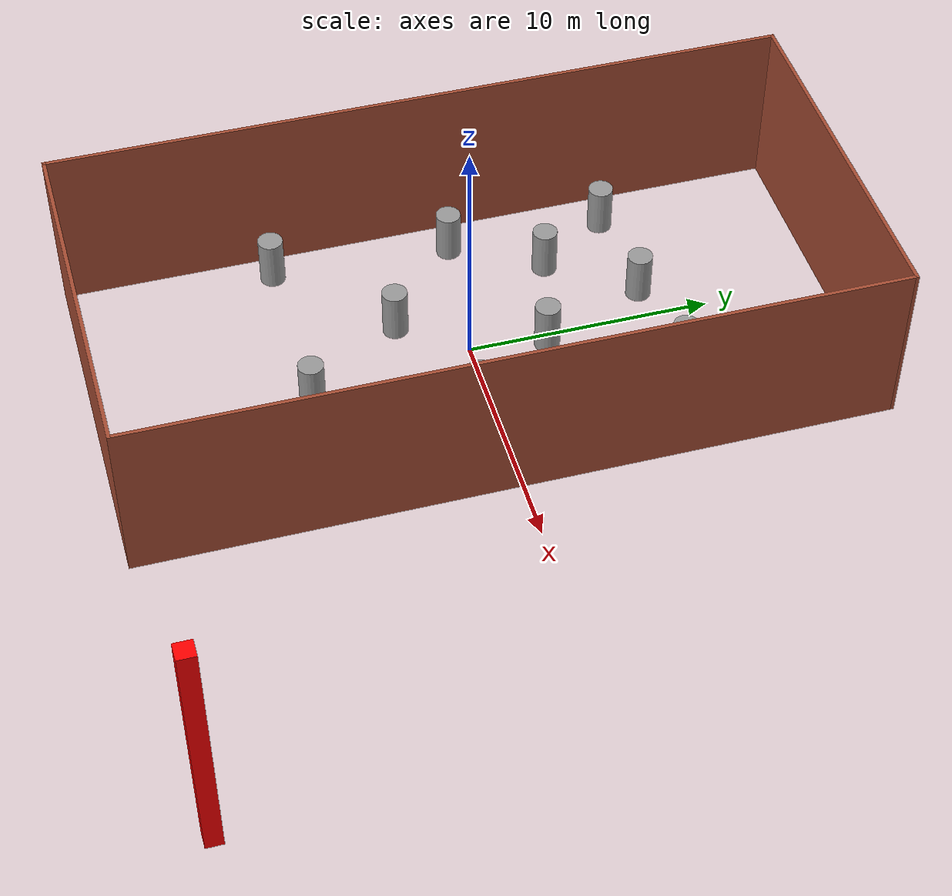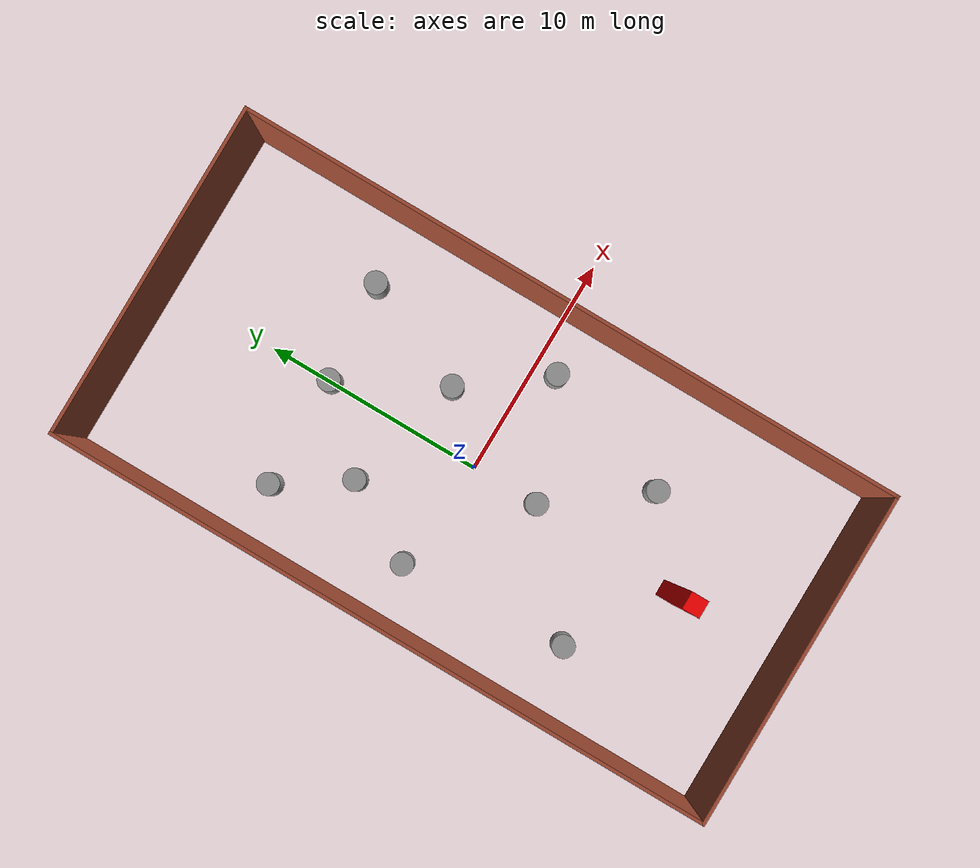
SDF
<sdf version="1.7">
 <world name="off-road_world">
  <light type="directional" name="sun">
   <pose>0 0 10 0 0 0</pose>
   <diffuse>0.8 0.8 0.8 1</diffuse>
   <specular>0.2 0.2 0.2 1</specular>
   <attenuation>
    <range>1000</range>
    <constant>0.9</constant>
    <linear>0.01</linear>
    <quadratic>0.001</quadratic>
   </attenuation>
   <direction>-0.5 0.1 -0.9</direction>
  </light>
  <include><name>high_wall</name><uri>model://high_wall</uri></include>
  <include><name>unit_box_real</name><pose>0 -13 -22.54 0 0 0</pose><uri>model://unit_box_real</uri></include>
  <include>
   <name>unit_cylinder0</name>
   <pose>4.43 7.36 1.7 0 0 0</pose>
   <uri>model://unit_cylinder</uri>
   <static>true</static>
  </include>
  <include>
   <name>unit_cylinder1</name>
   <pose>0 7.00 1.4 0 0 0</pose>
   <uri>model://unit_cylinder</uri>
   <static>true</static>
  </include>
  <include>
   <name>unit_cylinder2</name>
   <pose>5 -1 2.1 0 0 0</pose>
   <uri>model://unit_cylinder</uri>
   <static>true</static>
  </include>
  <include>
   <name>unit_cylinder3</name>
   <pose>-4.46 -6.94 1.7 0 0 0</pose>
   <uri>model://unit_cylinder</uri>
   <static>true</static>
  </include>
  <include>
   <name>unit_cylinder4</name>
   <pose>2.37 2.46 2 0 0 0</pose>
   <uri>model://unit_cylinder</uri>
   <static>true</static>
  </include>
  <include>
   <name>unit_cylinder5</name>
   <pose>0.00 -3.00 1.95 0 0 0</pose>
   <uri>model://unit_cylinder</uri>
   <static>true</static>
  </include>
  <include>
   <name>unit_cylinder6</name>
   <pose>-5.00 7.00 0.73 0 0 0</pose>
   <uri>model://unit_cylinder</uri>
   <static>true</static>
  </include>
  <include>
   <name>unit_cylinder7</name>
   <pose>3.00 -7.00 1.98 0 0 0</pose>
   <uri>model://unit_cylinder</uri>
   <static>true</static>
  </include>
  <include>
   <name>unit_cylinder8</name>
   <pose>-5.00 0.50 0.85 0 0 0</pose>
   <uri>model://unit_cylinder</uri>
   <static>true</static>
  </include>
  <include>
   <name>unit_cylinder9</name>
   <pose>-3 4 0.82 0 0 0</pose>
   <uri>model://unit_cylinder</uri>
   <static>true</static>
  </include>
 </world>
</sdf>

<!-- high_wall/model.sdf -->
<sdf version='1.7'>
  <model name='high_wall'>
    <pose>0 0 0 0 -0 0</pose>
    <link name='Wall_0'>
      <collision name='Wall_0_Collision'>
        <geometry>
          <box>
            <size>30.15 0.15 7</size>
          </box>
        </geometry>
        <pose>0 0 3.5 0 -0 0</pose>
      </collision>
      <visual name='Wall_0_Visual'>
        <pose>0 0 3.5 0 -0 0</pose>
        <geometry>
          <box>
            <size>30.15 0.15 7</size>
          </box>
        </geometry>
        <material>
          <script>
            <uri>file://media/materials/scripts/gazebo.material</uri>
            <name>Gazebo/Bricks</name>
          </script>
          <ambient>1 1 1 1</ambient>
        </material>
        <meta>
          <layer>0</layer>
        </meta>
      </visual>
      <pose>-7.5 0 0 0 -0 -1.5708</pose>
    </link>
    <link name='Wall_1'>
      <collision name='Wall_1_Collision'>
        <geometry>
          <box>
            <size>15.15 0.15 7</size>
          </box>
        </geometry>
        <pose>0 0 3.5 0 -0 0</pose>
      </collision>
      <visual name='Wall_1_Visual'>
        <pose>0 0 3.5 0 -0 0</pose>
        <geometry>
          <box>
            <size>15.15 0.15 7</size>
          </box>
        </geometry>
        <material>
          <script>
            <uri>file://media/materials/scripts/gazebo.material</uri>
            <name>Gazebo/Bricks</name>
          </script>
          <ambient>1 1 1 1</ambient>
        </material>
        <meta>
          <layer>0</layer>
        </meta>
      </visual>
      <pose>0 -15 0 0 -0 0</pose>
    </link>
    <link name='Wall_2'>
      <collision name='Wall_2_Collision'>
        <geometry>
          <box>
            <size>30.15 0.15 7</size>
          </box>
        </geometry>
        <pose>0 0 3.5 0 -0 0</pose>
      </collision>
      <visual name='Wall_2_Visual'>
        <pose>0 0 3.5 0 -0 0</pose>
        <geometry>
          <box>
            <size>30.15 0.15 7</size>
          </box>
        </geometry>
        <material>
          <script>
            <uri>file://media/materials/scripts/gazebo.material</uri>
            <name>Gazebo/Bricks</name>
          </script>
          <ambient>1 1 1 1</ambient>
        </material>
        <meta>
          <layer>0</layer>
        </meta>
      </visual>
      <pose>7.5 0 0 0 -0 1.5708</pose>
    </link>
    <link name='Wall_3'>
      <collision name='Wall_3_Collision'>
        <geometry>
          <box>
            <size>15.15 0.15 7</size>
          </box>
        </geometry>
        <pose>0 0 3.5 0 -0 0</pose>
      </collision>
      <visual name='Wall_3_Visual'>
        <pose>0 0 3.5 0 -0 0</pose>
        <geometry>
          <box>
            <size>15.15 0.15 7</size>
          </box>
        </geometry>
        <material>
          <script>
            <uri>file://media/materials/scripts/gazebo.material</uri>
            <name>Gazebo/Bricks</name>
          </script>
          <ambient>1 1 1 1</ambient>
        </material>
        <meta>
          <layer>0</layer>
        </meta>
      </visual>
      <pose>0 15 0 0 -0 3.14159</pose>
    </link>
    <static>1</static>
  </model>
</sdf>

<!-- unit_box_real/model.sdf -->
<sdf version='1.7'>
  <model name='unit_box_real'>
    <link name='link'>
      <inertial>
        <mass>1</mass>
        <inertia>
          <ixx>0.166667</ixx>
          <ixy>0</ixy>
          <ixz>0</ixz>
          <iyy>0.166667</iyy>
          <iyz>0</iyz>
          <izz>0.166667</izz>
        </inertia>
        <pose>0 0 0 0 -0 0</pose>
      </inertial>
      <self_collide>0</self_collide>
      <enable_wind>0</enable_wind>
      <kinematic>0</kinematic>
      <pose>0 0 0 0 -0 0</pose>
      <visual name='visual'>
        <geometry>
          <box>
            <size>1 1 15</size>
          </box>
        </geometry>
        <material>
          <script>
            <name>Gazebo/Grey</name>
            <uri>file://media/materials/scripts/gazebo.material</uri>
          </script>
          <shader type='pixel'/>
          <ambient>1 0 0 1</ambient>
        </material>
        <pose>0 0 0 0 -0 0</pose>
        <transparency>0</transparency>
        <cast_shadows>1</cast_shadows>
      </visual>
      <collision name='collision'>
        <laser_retro>0</laser_retro>
        <max_contacts>10</max_contacts>
        <pose>0 0 0 0 -0 0</pose>
        <geometry>
          <box>
            <size>1 1 1</size>
          </box>
        </geometry>
        <surface>
          <friction>
            <ode>
              <mu>1</mu>
              <mu2>1</mu2>
              <fdir1>0 0 0</fdir1>
              <slip1>0</slip1>
              <slip2>0</slip2>
            </ode>
            <torsional>
              <coefficient>1</coefficient>
              <patch_radius>0</patch_radius>
              <surface_radius>0</surface_radius>
              <use_patch_radius>1</use_patch_radius>
              <ode>
                <slip>0</slip>
              </ode>
            </torsional>
          </friction>
          <bounce>
            <restitution_coefficient>0</restitution_coefficient>
            <threshold>1e+06</threshold>
          </bounce>
          <contact>
            <collide_without_contact>0</collide_without_contact>
            <collide_without_contact_bitmask>1</collide_without_contact_bitmask>
            <collide_bitmask>1</collide_bitmask>
            <ode>
              <soft_cfm>0</soft_cfm>
              <soft_erp>0.2</soft_erp>
              <kp>1e+13</kp>
              <kd>1</kd>
              <max_vel>0.01</max_vel>
              <min_depth>0</min_depth>
            </ode>
            <bullet>
              <split_impulse>1</split_impulse>
              <split_impulse_penetration_threshold>-0.01</split_impulse_penetration_threshold>
              <soft_cfm>0</soft_cfm>
              <soft_erp>0.2</soft_erp>
              <kp>1e+13</kp>
              <kd>1</kd>
            </bullet>
          </contact>
        </surface>
      </collision>
    </link>
    <static>1</static>
    <allow_auto_disable>1</allow_auto_disable>
  </model>
</sdf>

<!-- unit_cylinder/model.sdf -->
<sdf version='1.7'>
  <model name='unit_cylinder'>
    <link name='link'>
      <inertial>
        <mass>99.98</mass>
        <inertia>
          <ixx>39.5754</ixx>
          <ixy>0</ixy>
          <ixz>0</ixz>
          <iyy>39.5754</iyy>
          <iyz>0</iyz>
          <izz>12.4975</izz>
        </inertia>
        <pose>0 0 0 0 -0 0</pose>
      </inertial>
      <self_collide>0</self_collide>
      <enable_wind>0</enable_wind>
      <kinematic>0</kinematic>
      <pose>0 -0 0.979317 0 -0 0</pose>
      <gravity>1</gravity>
      <visual name='visual'>
        <geometry>
          <cylinder>
            <radius>0.5</radius>
            <length>2</length>
          </cylinder>
        </geometry>
        <material>
          <script>
            <name>Gazebo/Grey</name>
            <uri>file://media/materials/scripts/gazebo.material</uri>
          </script>
          <shader type='pixel'>
            <normal_map>__default__</normal_map>
          </shader>
          <ambient>0.3 0.3 0.3 1</ambient>
          <diffuse>0.7 0.7 0.7 1</diffuse>
          <specular>0.01 0.01 0.01 1</specular>
          <emissive>0 0 0 1</emissive>
        </material>
        <pose>0 0 0 0 -0 0</pose>
        <transparency>0</transparency>
        <cast_shadows>1</cast_shadows>
      </visual>
      <collision name='collision'>
        <laser_retro>0</laser_retro>
        <max_contacts>10</max_contacts>
        <pose>0 0 0 0 -0 0</pose>
        <geometry>
          <cylinder>
            <radius>0.5</radius>
            <length>2</length>
          </cylinder>
        </geometry>
        <surface>
          <friction>
            <ode>
              <mu>1</mu>
              <mu2>1</mu2>
              <fdir1>0 0 0</fdir1>
              <slip1>0</slip1>
              <slip2>0</slip2>
            </ode>
            <torsional>
              <coefficient>1</coefficient>
              <patch_radius>0</patch_radius>
              <surface_radius>0</surface_radius>
              <use_patch_radius>1</use_patch_radius>
              <ode>
                <slip>0</slip>
              </ode>
            </torsional>
          </friction>
          <bounce>
            <restitution_coefficient>0</restitution_coefficient>
            <threshold>1e+06</threshold>
          </bounce>
          <contact>
            <collide_without_contact>0</collide_without_contact>
            <collide_without_contact_bitmask>1</collide_without_contact_bitmask>
            <collide_bitmask>1</collide_bitmask>
            <ode>
              <soft_cfm>0</soft_cfm>
              <soft_erp>0.2</soft_erp>
              <kp>1e+13</kp>
              <kd>1</kd>
              <max_vel>0.01</max_vel>
              <min_depth>0</min_depth>
            </ode>
            <bullet>
              <split_impulse>1</split_impulse>
              <split_impulse_penetration_threshold>-0.01</split_impulse_penetration_threshold>
              <soft_cfm>0</soft_cfm>
              <soft_erp>0.2</soft_erp>
              <kp>1e+13</kp>
              <kd>1</kd>
            </bullet>
          </contact>
        </surface>
      </collision>
    </link>
    <static>0</static>
    <allow_auto_disable>1</allow_auto_disable>
  </model>
</sdf>
